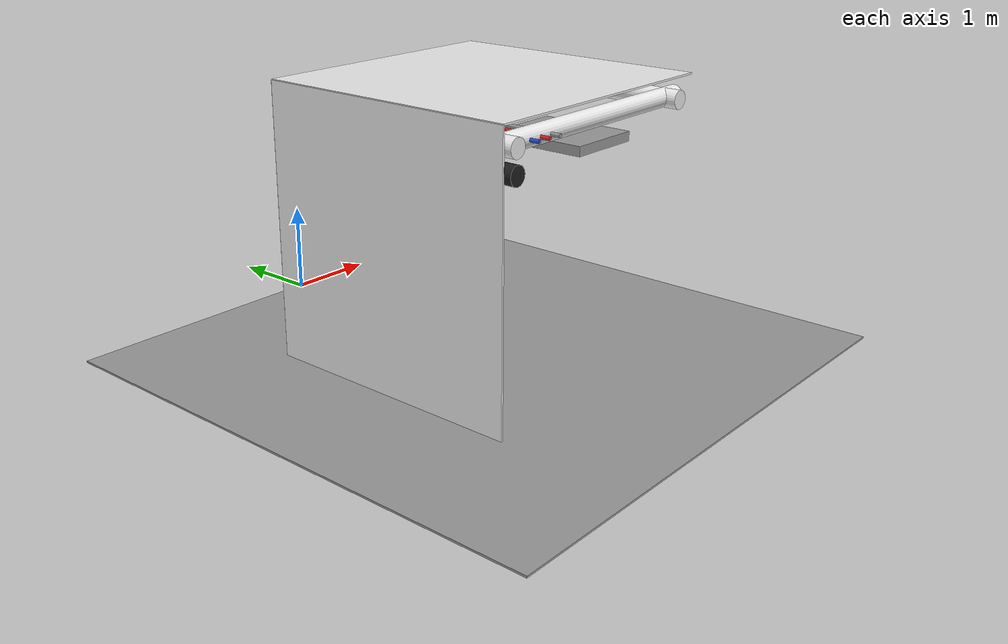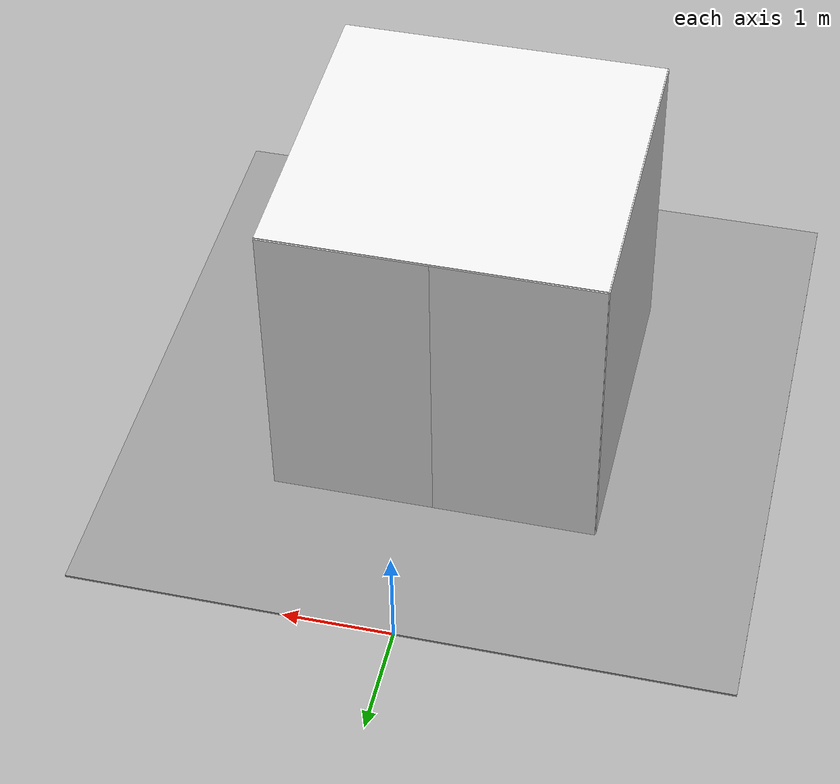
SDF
<sdf version="1.6">
 <world name="default">
  <model name="wall_back_0_0_0_0">
   <static>1</static>
   <pose>0.0 -1.5 1.5 0.0 0.0 0.0</pose>
   <link name="link">
    <collision name="collision"><geometry><box><size>3.0 0.02 3.0</size></box></geometry></collision>
    <visual name="visual">
     <material>
      <script><name>Gazebo/White</name><uri>file://media/materials/scripts/gazebo.material</uri></script>
     </material>
     <geometry><box><size>3.0 0.02 3.0</size></box></geometry>
    </visual>
   </link>
  </model>
  <model name="wall_front_0_-1_0_3">
   <static>1</static>
   <pose>-1.5 -3.0 1.5 0.0 0.0 1.57</pose>
   <link name="link">
    <collision name="collision"><geometry><box><size>3.0 0.02 3.0</size></box></geometry></collision>
    <visual name="visual">
     <material>
      <script><name>Gazebo/White</name><uri>file://media/materials/scripts/gazebo.material</uri></script>
     </material>
     <geometry><box><size>3.0 0.02 3.0</size></box></geometry>
    </visual>
   </link>
  </model>
  <model name="wall_right_0_-1_0_3">
   <static>1</static>
   <pose>0.0 -1.5 1.5 0.0 0.0 3.14</pose>
   <link name="link">
    <collision name="collision"><geometry><box><size>3.0 0.02 3.0</size></box></geometry></collision>
    <visual name="visual">
     <material>
      <script><name>Gazebo/White</name><uri>file://media/materials/scripts/gazebo.material</uri></script>
     </material>
     <geometry><box><size>3.0 0.02 3.0</size></box></geometry>
    </visual>
   </link>
  </model>
  <model name="wall_top_0_-1_0_3">
   <static>1</static>
   <pose>0.0 -3.0 3.0 1.57 0.0 1.57</pose>
   <link name="link">
    <collision name="collision"><geometry><box><size>3.0 0.02 3.0</size></box></geometry></collision>
    <visual name="visual">
     <material>
      <script><name>Gazebo/White</name><uri>file://media/materials/scripts/gazebo.material</uri></script>
     </material>
     <geometry><box><size>3.0 0.02 3.0</size></box></geometry>
    </visual>
   </link>
  </model>
  <model name="ceiling_1_0_-1_1_3">
   <pose>0.0 -4.0 2.55 0.0 0.0 3.14</pose>
   <link name="link_1">
    <visual name="visual">
     <geometry><box><size>0.8 1 0.1</size></box></geometry>
     <material>
      <script><uri>file://media/materials/scripts/gazebo.material</uri><name>Gazebo/Grey</name></script>
     </material>
    </visual>
    <collision name="collision"><geometry><box><size>0.8 1 0.1</size></box></geometry></collision>
   </link>
   <static>1</static>
  </model>
  <model name="white_pipe_left_0_-1_0_3">
   <static>1</static>
   <pose>0.0 -3.0 2.76 0.0 0.0 1.57</pose>
   <link name="link_0">
    <visual name="visual">
     <pose>-1.3 0 0 1.57 0 0</pose>
     <geometry><cylinder><radius>0.1</radius><length>3.0</length></cylinder></geometry>
     <material>
      <script><uri>file://media/materials/scripts/gazebo.material</uri><name>Gazebo/White</name></script>
     </material>
    </visual>
    <collision name="collision">
     <pose>-1.3 0 0 1.57 0 0</pose>
     <geometry><cylinder><radius>0.1</radius><length>3.0</length></cylinder></geometry>
    </collision>
   </link>
  </model>
  <model name="white_pipe_right_0_-1_0_3">
   <static>1</static>
   <pose>0.0 -3.0 2.76 0.0 0.0 1.57</pose>
   <link name="link_0">
    <visual name="visual">
     <pose>1.3 0 0 1.57 0 0</pose>
     <geometry><cylinder><radius>0.1</radius><length>3.0</length></cylinder></geometry>
     <material>
      <script><uri>file://media/materials/scripts/gazebo.material</uri><name>Gazebo/White</name></script>
     </material>
    </visual>
    <collision name="collision">
     <pose>1.3 0 0 1.57 0 0</pose>
     <geometry><cylinder><radius>0.1</radius><length>3.0</length></cylinder></geometry>
    </collision>
   </link>
  </model>
  <model name="black_pipe_right_0_-1_0_3">
   <static>1</static>
   <pose>0.0 -3.0 2.76 0.0 0.0 1.57</pose>
   <link name="link_0">
    <visual name="visual">
     <pose>1.3 0 -0.25 1.57 0 0</pose>
     <geometry><cylinder><radius>0.1</radius><length>3.0</length></cylinder></geometry>
     <material>
      <script><uri>file://media/materials/scripts/gazebo.material</uri><name>Gazebo/Black</name></script>
     </material>
    </visual>
    <collision name="collision">
     <pose>1.3 0 -0.25 1.57 0 0</pose>
     <geometry><cylinder><radius>0.1</radius><length>3.0</length></cylinder></geometry>
    </collision>
   </link>
  </model>
  <model name="grey_pipe_right_0_-1_0_3">
   <static>1</static>
   <pose>0.0 -3.0 2.76 0.0 0.0 1.57</pose>
   <link name="link_0">
    <visual name="visual">
     <pose>0.7 0 0 1.57 0 0</pose>
     <geometry><cylinder><radius>0.02</radius><length>3.0</length></cylinder></geometry>
     <material>
      <script><uri>file://media/materials/scripts/gazebo.material</uri><name>Gazebo/Grey</name></script>
     </material>
    </visual>
    <collision name="collision">
     <pose>0.7 0 0 1.57 0 0</pose>
     <geometry><cylinder><radius>0.02</radius><length>3.0</length></cylinder></geometry>
    </collision>
   </link>
  </model>
  <model name="red_pipe_right_0_-1_0_3">
   <static>1</static>
   <pose>0.0 -3.0 2.76 0.0 0.0 1.57</pose>
   <link name="link_0">
    <visual name="visual">
     <pose>0.85 0 0 1.57 0 0</pose>
     <geometry><cylinder><radius>0.02</radius><length>3.0</length></cylinder></geometry>
     <material>
      <script><uri>file://media/materials/scripts/gazebo.material</uri><name>Gazebo/Red</name></script>
     </material>
    </visual>
    <collision name="collision">
     <pose>0.85 0 0 1.57 0 0</pose>
     <geometry><cylinder><radius>0.02</radius><length>3.0</length></cylinder></geometry>
    </collision>
   </link>
  </model>
  <model name="blue_pipe_right_0_-1_0_3">
   <static>1</static>
   <pose>0.0 -3.0 2.76 0.0 0.0 1.57</pose>
   <link name="link_0">
    <visual name="visual">
     <pose>1 0 0 1.57 0 0</pose>
     <geometry><cylinder><radius>0.02</radius><length>3.0</length></cylinder></geometry>
     <material>
      <script><uri>file://media/materials/scripts/gazebo.material</uri><name>Gazebo/Blue</name></script>
     </material>
    </visual>
    <collision name="collision">
     <pose>1 0 0 1.57 0 0</pose>
     <geometry><cylinder><radius>0.02</radius><length>3.0</length></cylinder></geometry>
    </collision>
   </link>
  </model>
  <model name="white_pipe_left_1_0_-1_0_3">
   <static>1</static>
   <pose>0.0 -3.0 2.76 0.0 0.0 3.14</pose>
   <link name="link_0">
    <visual name="visual">
     <pose>-1.3 0 0 1.57 0 0</pose>
     <geometry><cylinder><radius>0.1</radius><length>3.0</length></cylinder></geometry>
     <material>
      <script><uri>file://media/materials/scripts/gazebo.material</uri><name>Gazebo/White</name></script>
     </material>
    </visual>
    <collision name="collision">
     <pose>-1.3 0 0 1.57 0 0</pose>
     <geometry><cylinder><radius>0.1</radius><length>3.0</length></cylinder></geometry>
    </collision>
   </link>
  </model>
  <model name="white_pipe_right_1_0_-1_0_3">
   <static>1</static>
   <pose>0.0 -3.0 2.76 0.0 0.0 3.14</pose>
   <link name="link_0">
    <visual name="visual">
     <pose>1.3 0 0 1.57 0 0</pose>
     <geometry><cylinder><radius>0.1</radius><length>3.0</length></cylinder></geometry>
     <material>
      <script><uri>file://media/materials/scripts/gazebo.material</uri><name>Gazebo/White</name></script>
     </material>
    </visual>
    <collision name="collision">
     <pose>1.3 0 0 1.57 0 0</pose>
     <geometry><cylinder><radius>0.1</radius><length>3.0</length></cylinder></geometry>
    </collision>
   </link>
  </model>
  <model name="black_pipe_right_1_0_-1_0_3">
   <static>1</static>
   <pose>0.0 -3.0 2.76 0.0 0.0 3.14</pose>
   <link name="link_0">
    <visual name="visual">
     <pose>1.3 0 -0.25 1.57 0 0</pose>
     <geometry><cylinder><radius>0.1</radius><length>3.0</length></cylinder></geometry>
     <material>
      <script><uri>file://media/materials/scripts/gazebo.material</uri><name>Gazebo/Black</name></script>
     </material>
    </visual>
    <collision name="collision">
     <pose>1.3 0 -0.25 1.57 0 0</pose>
     <geometry><cylinder><radius>0.1</radius><length>3.0</length></cylinder></geometry>
    </collision>
   </link>
  </model>
  <model name="grey_pipe_right_1_0_-1_0_3">
   <static>1</static>
   <pose>0.0 -3.0 2.76 0.0 0.0 3.14</pose>
   <link name="link_0">
    <visual name="visual">
     <pose>0.7 0 0 1.57 0 0</pose>
     <geometry><cylinder><radius>0.02</radius><length>3.0</length></cylinder></geometry>
     <material>
      <script><uri>file://media/materials/scripts/gazebo.material</uri><name>Gazebo/Grey</name></script>
     </material>
    </visual>
    <collision name="collision">
     <pose>0.7 0 0 1.57 0 0</pose>
     <geometry><cylinder><radius>0.02</radius><length>3.0</length></cylinder></geometry>
    </collision>
   </link>
  </model>
  <model name="red_pipe_right_1_0_-1_0_3">
   <static>1</static>
   <pose>0.0 -3.0 2.76 0.0 0.0 3.14</pose>
   <link name="link_0">
    <visual name="visual">
     <pose>0.85 0 0 1.57 0 0</pose>
     <geometry><cylinder><radius>0.02</radius><length>3.0</length></cylinder></geometry>
     <material>
      <script><uri>file://media/materials/scripts/gazebo.material</uri><name>Gazebo/Red</name></script>
     </material>
    </visual>
    <collision name="collision">
     <pose>0.85 0 0 1.57 0 0</pose>
     <geometry><cylinder><radius>0.02</radius><length>3.0</length></cylinder></geometry>
    </collision>
   </link>
  </model>
  <model name="blue_pipe_right_1_0_-1_0_3">
   <static>1</static>
   <pose>0.0 -3.0 2.76 0.0 0.0 3.14</pose>
   <link name="link_0">
    <visual name="visual">
     <pose>1 0 0 1.57 0 0</pose>
     <geometry><cylinder><radius>0.02</radius><length>3.0</length></cylinder></geometry>
     <material>
      <script><uri>file://media/materials/scripts/gazebo.material</uri><name>Gazebo/Blue</name></script>
     </material>
    </visual>
    <collision name="collision">
     <pose>1 0 0 1.57 0 0</pose>
     <geometry><cylinder><radius>0.02</radius><length>3.0</length></cylinder></geometry>
    </collision>
   </link>
  </model>
  <model name="wall_bottom_0_-1_0_3">
   <static>1</static>
   <pose>0.0 -3.0 0.0 0.0 0.0 1.57</pose>
   <link name="link">
    <collision name="collision"><geometry><box><size>6.0 6.0 0.02</size></box></geometry></collision>
    <visual name="visual">
     <material>
      <script><name>Gazebo/Grey</name><uri>file://media/materials/scripts/gazebo.material</uri></script>
     </material>
     <geometry><box><size>6.0 6.0 0.02</size></box></geometry>
    </visual>
   </link>
  </model>
 </world>
</sdf>
